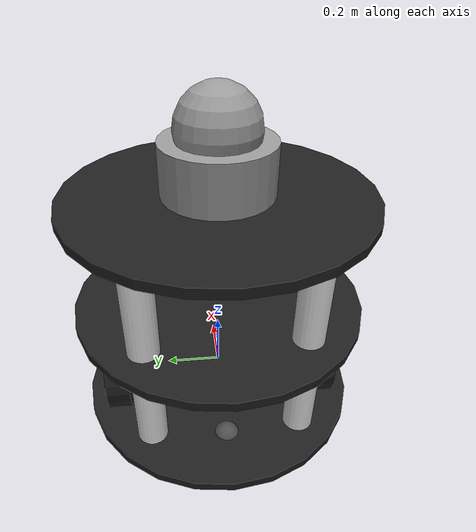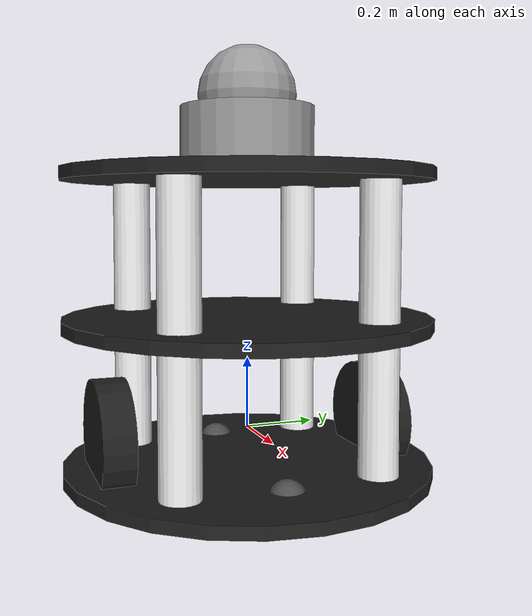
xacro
<?xml version="1.0"?>
<robot name="warehouse_robot" xmlns:xacro="http://www.ros.org/wiki/xacro">

  <xacro:arg name="robot_name"    default="robot1"/>
  <xacro:arg name="robot_id"      default="Robot_1"/>
  <xacro:arg name="laser_enable"  default="true"/>
  <xacro:arg name="camera_enable" default="true"/>
  <xacro:arg name="imu_enable"    default="true"/>

  <xacro:property name="robot_ns" value="$(arg robot_name)"/>

  <!-- Physical properties -->
  <xacro:property name="base_mass"       value="8.0"/>
  <xacro:property name="wheel_mass"      value="0.200"/>
  <xacro:property name="wheel_radius"    value="0.165"/>
  <xacro:property name="wheel_width"     value="0.090"/>
  <xacro:property name="wheel_sep_half"  value="0.400"/>
  <xacro:property name="caster_radius"   value="0.050"/>
  <xacro:property name="plate_r"         value="0.525"/>
  <xacro:property name="plate_h"         value="0.035"/>
  <xacro:property name="standoff_r"      value="0.055"/>
  <xacro:property name="standoff_xy"     value="0.275"/>

  <!-- z-centres in base_link frame  (ground = −0.170) -->
  <!-- TB3 heights above ground × 5: bottom≈0.060, mid≈0.475, top≈0.890  -->
  <xacro:property name="bot_plate_z"    value="-0.110"/>   <!-- 0.060 m above ground -->
  <xacro:property name="mid_plate_z"    value=" 0.305"/>   <!-- 0.475 m above ground -->
  <xacro:property name="top_plate_z"    value=" 0.720"/>   <!-- 0.890 m above ground -->

  <!-- standoffs span from top face of bottom plate to bottom face of top plate -->
  <!-- len = (top_plate_z − plate_h/2) − (bot_plate_z + plate_h/2) = 0.795    -->
  <xacro:property name="standoff_len"   value="0.795"/>
  <xacro:property name="standoff_z"     value="0.305"/>    <!-- midpoint = mid plate -->

  <!-- LiDAR housing: just above top plate                                      -->
  <!-- housing_h = 0.175,  lidar_z = top_plate_z + plate_h/2 + housing_h/2     -->
  <xacro:property name="lidar_z"        value="0.825"/>
  <xacro:property name="lidar_h"        value="0.175"/>
  <xacro:property name="lidar_r"        value="0.190"/>

  <!-- casters: centre at ground + caster_radius = −0.165 + 0.050 = −0.115     -->
  <xacro:property name="caster_z"       value="-0.115"/>

  <!-- Helper: fixed joint -->
  <xacro:macro name="fixed_joint" params="name parent child ox oy oz">
    <joint name="${robot_ns}/${name}" type="fixed">
      <parent link="${robot_ns}/${parent}"/>
      <child  link="${robot_ns}/${child}"/>
      <origin xyz="${ox} ${oy} ${oz}" rpy="0 0 0"/>
    </joint>
  </xacro:macro>

  <!-- ── base footprint ── -->
  <link name="${robot_ns}/base_footprint"/>
  <joint name="${robot_ns}/base_joint" type="fixed">
    <parent link="${robot_ns}/base_footprint"/>
    <child  link="${robot_ns}/base_link"/>
    <origin xyz="0 0 0" rpy="0 0 0"/>
  </joint>

  <!-- ══════════════════════════════════════════════════════════════
       1. BASE LINK  —  bottom plate  +  physics / collision
       ══════════════════════════════════════════════════════════════ -->
  <link name="${robot_ns}/base_link">
    <visual>
      <origin xyz="0 0 ${bot_plate_z}" rpy="0 0 0"/>
      <geometry><cylinder length="${plate_h}" radius="${plate_r}"/></geometry>
    </visual>
    <!-- Collision covers full body height so robot doesn't clip shelves -->
    <collision>
      <origin xyz="0 0 0.305" rpy="0 0 0"/>
      <geometry><cylinder length="0.870" radius="${plate_r}"/></geometry>
    </collision>
    <inertial>
      <!-- CoM at mid-body height for stability -->
      <origin xyz="0 0 0.305" rpy="0 0 0"/>
      <mass value="${base_mass}"/>
      <!-- solid cylinder r=0.525, h=0.870: Ixx=Iyy≈1.033, Izz≈1.103 -->
      <inertia ixx="1.033" iyy="1.033" izz="1.103"
               ixy="0" ixz="0" iyz="0"/>
    </inertial>
  </link>
  <gazebo reference="${robot_ns}/base_link">
    <material>Gazebo/Black</material>
  </gazebo>

  <!-- ══════════════════════════════════════════════════════════════
       2. MIDDLE PLATE
       ══════════════════════════════════════════════════════════════ -->
  <xacro:fixed_joint name="mid_plate_jnt" parent="base_link" child="mid_plate_link"
                     ox="0" oy="0" oz="0"/>
  <link name="${robot_ns}/mid_plate_link">
    <visual>
      <origin xyz="0 0 ${mid_plate_z}" rpy="0 0 0"/>
      <geometry><cylinder length="${plate_h}" radius="${plate_r}"/></geometry>
    </visual>
    <inertial>
      <mass value="0.001"/>
      <inertia ixx="1e-9" iyy="1e-9" izz="1e-9" ixy="0" ixz="0" iyz="0"/>
    </inertial>
  </link>
  <gazebo reference="${robot_ns}/mid_plate_link">
    <material>Gazebo/Black</material>
  </gazebo>

  <!-- ══════════════════════════════════════════════════════════════
       3. TOP PLATE
       ══════════════════════════════════════════════════════════════ -->
  <xacro:fixed_joint name="top_plate_jnt" parent="base_link" child="top_plate_link"
                     ox="0" oy="0" oz="0"/>
  <link name="${robot_ns}/top_plate_link">
    <visual>
      <origin xyz="0 0 ${top_plate_z}" rpy="0 0 0"/>
      <geometry><cylinder length="${plate_h}" radius="${plate_r}"/></geometry>
    </visual>
    <inertial>
      <mass value="0.001"/>
      <inertia ixx="1e-9" iyy="1e-9" izz="1e-9" ixy="0" ixz="0" iyz="0"/>
    </inertial>
  </link>
  <gazebo reference="${robot_ns}/top_plate_link">
    <material>Gazebo/Black</material>
  </gazebo>

  <!-- ══════════════════════════════════════════════════════════════
       4–7. STANDOFF POLES — white aluminium posts
       ══════════════════════════════════════════════════════════════ -->
  <xacro:fixed_joint name="standoff_fl_jnt" parent="base_link" child="standoff_fl_link"
                     ox="${standoff_xy}" oy="${standoff_xy}" oz="${standoff_z}"/>
  <link name="${robot_ns}/standoff_fl_link">
    <visual>
      <origin xyz="0 0 0" rpy="0 0 0"/>
      <geometry><cylinder length="${standoff_len}" radius="${standoff_r}"/></geometry>
    </visual>
    <inertial>
      <mass value="0.001"/>
      <inertia ixx="1e-9" iyy="1e-9" izz="1e-9" ixy="0" ixz="0" iyz="0"/>
    </inertial>
  </link>
  <gazebo reference="${robot_ns}/standoff_fl_link">
    <material>Gazebo/White</material>
  </gazebo>

  <xacro:fixed_joint name="standoff_fr_jnt" parent="base_link" child="standoff_fr_link"
                     ox="${standoff_xy}" oy="-${standoff_xy}" oz="${standoff_z}"/>
  <link name="${robot_ns}/standoff_fr_link">
    <visual>
      <origin xyz="0 0 0" rpy="0 0 0"/>
      <geometry><cylinder length="${standoff_len}" radius="${standoff_r}"/></geometry>
    </visual>
    <inertial>
      <mass value="0.001"/>
      <inertia ixx="1e-9" iyy="1e-9" izz="1e-9" ixy="0" ixz="0" iyz="0"/>
    </inertial>
  </link>
  <gazebo reference="${robot_ns}/standoff_fr_link">
    <material>Gazebo/White</material>
  </gazebo>

  <xacro:fixed_joint name="standoff_rl_jnt" parent="base_link" child="standoff_rl_link"
                     ox="-${standoff_xy}" oy="${standoff_xy}" oz="${standoff_z}"/>
  <link name="${robot_ns}/standoff_rl_link">
    <visual>
      <origin xyz="0 0 0" rpy="0 0 0"/>
      <geometry><cylinder length="${standoff_len}" radius="${standoff_r}"/></geometry>
    </visual>
    <inertial>
      <mass value="0.001"/>
      <inertia ixx="1e-9" iyy="1e-9" izz="1e-9" ixy="0" ixz="0" iyz="0"/>
    </inertial>
  </link>
  <gazebo reference="${robot_ns}/standoff_rl_link">
    <material>Gazebo/White</material>
  </gazebo>

  <xacro:fixed_joint name="standoff_rr_jnt" parent="base_link" child="standoff_rr_link"
                     ox="-${standoff_xy}" oy="-${standoff_xy}" oz="${standoff_z}"/>
  <link name="${robot_ns}/standoff_rr_link">
    <visual>
      <origin xyz="0 0 0" rpy="0 0 0"/>
      <geometry><cylinder length="${standoff_len}" radius="${standoff_r}"/></geometry>
    </visual>
    <inertial>
      <mass value="0.001"/>
      <inertia ixx="1e-9" iyy="1e-9" izz="1e-9" ixy="0" ixz="0" iyz="0"/>
    </inertial>
  </link>
  <gazebo reference="${robot_ns}/standoff_rr_link">
    <material>Gazebo/White</material>
  </gazebo>

  <!-- ══════════════════════════════════════════════════════════════
       8. LiDAR HOUSING — grey cylinder + dome on top plate
       ══════════════════════════════════════════════════════════════ -->
  <xacro:fixed_joint name="lidar_housing_jnt" parent="base_link" child="lidar_housing_link"
                     ox="0" oy="0" oz="${lidar_z}"/>
  <link name="${robot_ns}/lidar_housing_link">
    <!-- main cylinder body -->
    <visual>
      <origin xyz="0 0 0" rpy="0 0 0"/>
      <geometry><cylinder length="${lidar_h}" radius="${lidar_r}"/></geometry>
    </visual>
    <!-- dome cap -->
    <visual>
      <origin xyz="0 0 0.120" rpy="0 0 0"/>
      <geometry><sphere radius="0.140"/></geometry>
    </visual>
    <inertial>
      <mass value="0.001"/>
      <inertia ixx="1e-9" iyy="1e-9" izz="1e-9" ixy="0" ixz="0" iyz="0"/>
    </inertial>
  </link>
  <gazebo reference="${robot_ns}/lidar_housing_link">
    <material>Gazebo/Grey</material>
  </gazebo>

  <joint name="${robot_ns}/wheel_left_joint" type="continuous">
    <parent link="${robot_ns}/base_link"/>
    <child  link="${robot_ns}/wheel_left_link"/>
    <origin xyz="0.0 ${wheel_sep_half} 0.0" rpy="-1.5708 0 0"/>
    <axis   xyz="0 0 1"/>
  </joint>
  <link name="${robot_ns}/wheel_left_link">
    <visual>
      <origin xyz="0 0 0" rpy="0 0 0"/>
      <geometry><cylinder length="${wheel_width}" radius="${wheel_radius}"/></geometry>
    </visual>
    <collision>
      <origin xyz="0 0 0" rpy="0 0 0"/>
      <geometry><cylinder length="${wheel_width}" radius="${wheel_radius}"/></geometry>
    </collision>
    <inertial>
      <mass value="${wheel_mass}"/>
      <!-- cylinder spinning about Z: Ixx=Iyy=m(3r²+h²)/12, Izz=mr²/2 -->
      <inertia ixx="0.00150" iyy="0.00150" izz="0.00272"
               ixy="0" ixz="0" iyz="0"/>
    </inertial>
  </link>
  <gazebo reference="${robot_ns}/wheel_left_link">
    <material>Gazebo/FlatBlack</material>
    <mu1>1.0</mu1>
    <mu2>1.0</mu2>
  </gazebo>

  <joint name="${robot_ns}/wheel_right_joint" type="continuous">
    <parent link="${robot_ns}/base_link"/>
    <child  link="${robot_ns}/wheel_right_link"/>
    <origin xyz="0.0 -${wheel_sep_half} 0.0" rpy="-1.5708 0 0"/>
    <axis   xyz="0 0 1"/>
  </joint>
  <link name="${robot_ns}/wheel_right_link">
    <visual>
      <origin xyz="0 0 0" rpy="0 0 0"/>
      <geometry><cylinder length="${wheel_width}" radius="${wheel_radius}"/></geometry>
    </visual>
    <collision>
      <origin xyz="0 0 0" rpy="0 0 0"/>
      <geometry><cylinder length="${wheel_width}" radius="${wheel_radius}"/></geometry>
    </collision>
    <inertial>
      <mass value="${wheel_mass}"/>
      <inertia ixx="0.00150" iyy="0.00150" izz="0.00272"
               ixy="0" ixz="0" iyz="0"/>
    </inertial>
  </link>
  <gazebo reference="${robot_ns}/wheel_right_link">
    <material>Gazebo/FlatBlack</material>
    <mu1>1.0</mu1>
    <mu2>1.0</mu2>
  </gazebo>

  <!-- ══════════════════════════════════════════════════════════════
       11 & 12. CASTER BALLS  (front + rear)  — zero friction
       ══════════════════════════════════════════════════════════════ -->
  <joint name="${robot_ns}/caster_front_joint" type="fixed">
    <parent link="${robot_ns}/base_link"/>
    <child  link="${robot_ns}/caster_front_link"/>
    <origin xyz="0.300 0.0 ${caster_z}" rpy="0 0 0"/>
  </joint>
  <link name="${robot_ns}/caster_front_link">
    <visual><geometry><sphere radius="${caster_radius}"/></geometry></visual>
    <collision><geometry><sphere radius="${caster_radius}"/></geometry></collision>
    <inertial>
      <mass value="0.010"/>
      <inertia ixx="4e-7" iyy="4e-7" izz="4e-7" ixy="0" ixz="0" iyz="0"/>
    </inertial>
  </link>
  <gazebo reference="${robot_ns}/caster_front_link">
    <material>Gazebo/DarkGrey</material>
    <mu1>0.0</mu1>
    <mu2>0.0</mu2>
  </gazebo>

  <joint name="${robot_ns}/caster_rear_joint" type="fixed">
    <parent link="${robot_ns}/base_link"/>
    <child  link="${robot_ns}/caster_rear_link"/>
    <origin xyz="-0.300 0.0 ${caster_z}" rpy="0 0 0"/>
  </joint>
  <link name="${robot_ns}/caster_rear_link">
    <visual><geometry><sphere radius="${caster_radius}"/></geometry></visual>
    <collision><geometry><sphere radius="${caster_radius}"/></geometry></collision>
    <inertial>
      <mass value="0.010"/>
      <inertia ixx="4e-7" iyy="4e-7" izz="4e-7" ixy="0" ixz="0" iyz="0"/>
    </inertial>
  </link>
  <gazebo reference="${robot_ns}/caster_rear_link">
    <material>Gazebo/DarkGrey</material>
    <mu1>0.0</mu1>
    <mu2>0.0</mu2>
  </gazebo>

  <!-- ══════════════════════════════════════════════════════════════
       13. LiDAR SENSOR — positioned at top of housing
       ══════════════════════════════════════════════════════════════ -->
  <xacro:if value="$(arg laser_enable)">
    <joint name="${robot_ns}/scan_joint" type="fixed">
      <parent link="${robot_ns}/base_link"/>
      <child  link="${robot_ns}/base_scan"/>
      <origin xyz="0 0 ${lidar_z}" rpy="0 0 0"/>
    </joint>
    <link name="${robot_ns}/base_scan">
      <inertial>
        <mass value="0.001"/>
        <inertia ixx="1e-9" iyy="1e-9" izz="1e-9" ixy="0" ixz="0" iyz="0"/>
      </inertial>
    </link>
    <gazebo reference="${robot_ns}/base_scan">
      <sensor type="ray" name="${robot_ns}_lidar">
        <pose>0 0 0 0 0 0</pose>
        <visualize>false</visualize>
        <update_rate>10</update_rate>
        <ray>
          <scan>
            <horizontal>
              <samples>360</samples>
              <resolution>1</resolution>
              <min_angle>-3.14159265</min_angle>
              <max_angle> 3.14159265</max_angle>
            </horizontal>
          </scan>
          <range>
            <min>0.20</min>
            <max>15.0</max>
            <resolution>0.015</resolution>
          </range>
          <noise>
            <type>gaussian</type>
            <mean>0.0</mean>
            <stddev>0.01</stddev>
          </noise>
        </ray>
        <plugin name="gazebo_ros_lidar" filename="libgazebo_ros_ray_sensor.so">
          <ros>
            <namespace>/${robot_ns}</namespace>
            <remapping>~/out:=scan</remapping>
          </ros>
          <output_type>sensor_msgs/LaserScan</output_type>
          <frame_name>${robot_ns}/base_scan</frame_name>
        </plugin>
      </sensor>
    </gazebo>
  </xacro:if>

  <!-- ══════════════════════════════════════════════════════════════
       14. IMU
       ══════════════════════════════════════════════════════════════ -->
  <xacro:if value="$(arg imu_enable)">
    <joint name="${robot_ns}/imu_joint" type="fixed">
      <parent link="${robot_ns}/base_link"/>
      <child  link="${robot_ns}/imu_link"/>
      <origin xyz="0 0 0" rpy="0 0 0"/>
    </joint>
    <link name="${robot_ns}/imu_link">
      <inertial>
        <mass value="0.001"/>
        <inertia ixx="1e-9" iyy="1e-9" izz="1e-9" ixy="0" ixz="0" iyz="0"/>
      </inertial>
    </link>
  </xacro:if>

  <gazebo>
    <plugin name="${robot_ns}_diff_drive" filename="libgazebo_ros_diff_drive.so">
      <ros>
        <namespace>/${robot_ns}</namespace>
      </ros>
      <left_joint>${robot_ns}/wheel_left_joint</left_joint>
      <right_joint>${robot_ns}/wheel_right_joint</right_joint>
      <wheel_separation>0.800</wheel_separation>
      <wheel_diameter>0.330</wheel_diameter>
      <max_wheel_torque>20</max_wheel_torque>
      <max_wheel_acceleration>30.0</max_wheel_acceleration>
      <command_topic>cmd_vel</command_topic>
      <publish_odom>true</publish_odom>
      <publish_odom_tf>true</publish_odom_tf>
      <publish_wheel_tf>true</publish_wheel_tf>
      <odometry_topic>odom</odometry_topic>
      <odometry_frame>${robot_ns}/odom</odometry_frame>
      <robot_base_frame>${robot_ns}/base_footprint</robot_base_frame>
    </plugin>
  </gazebo>

</robot>
